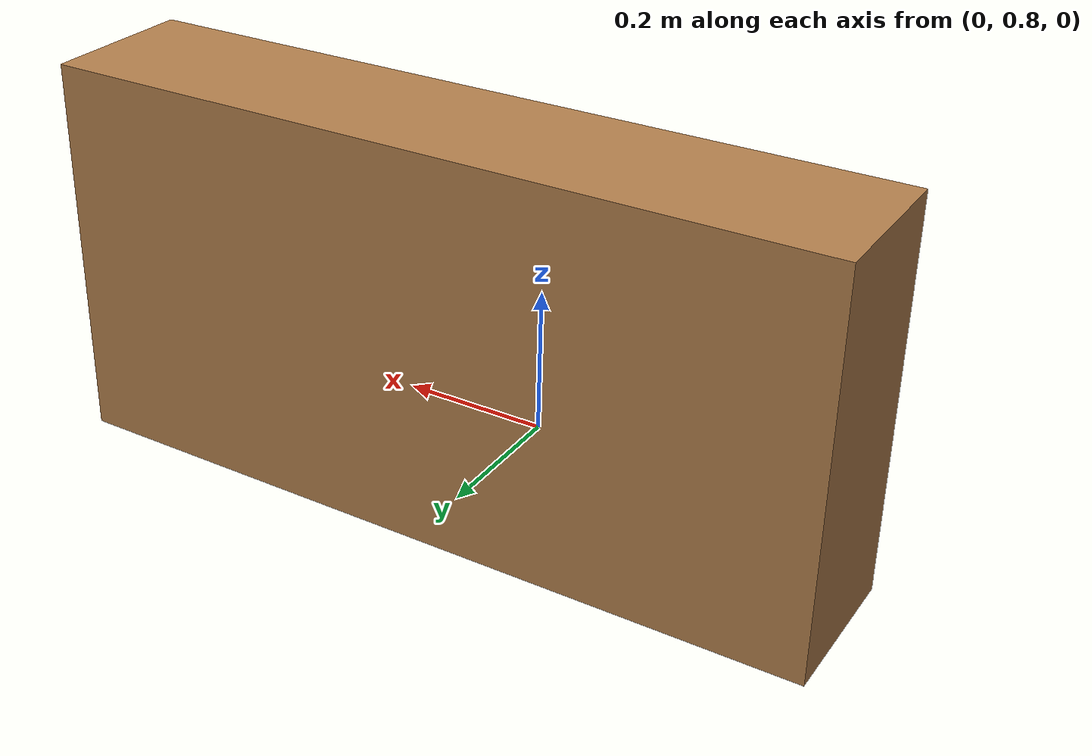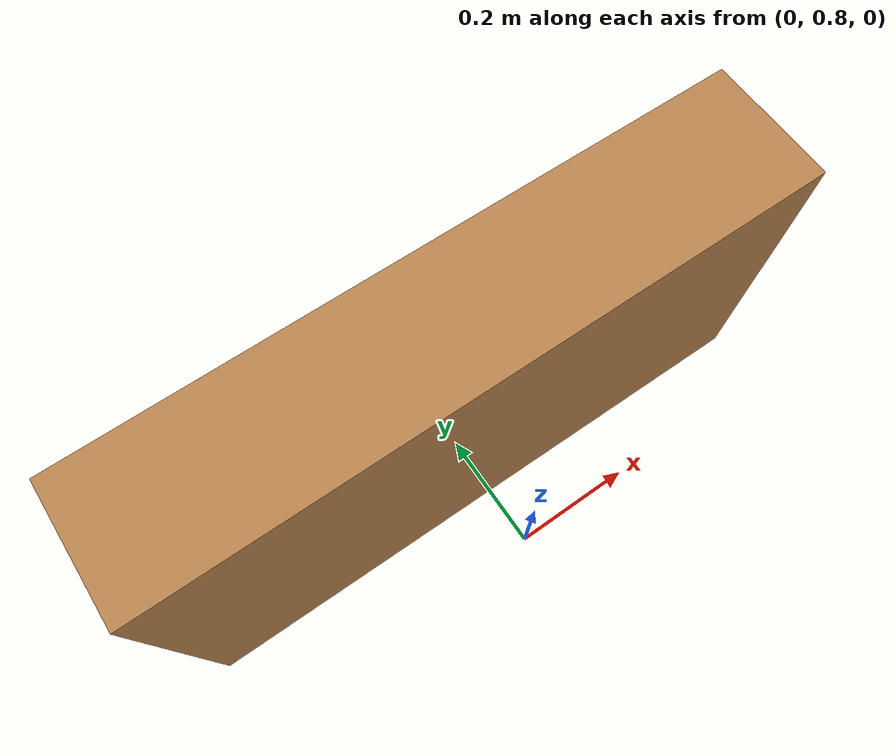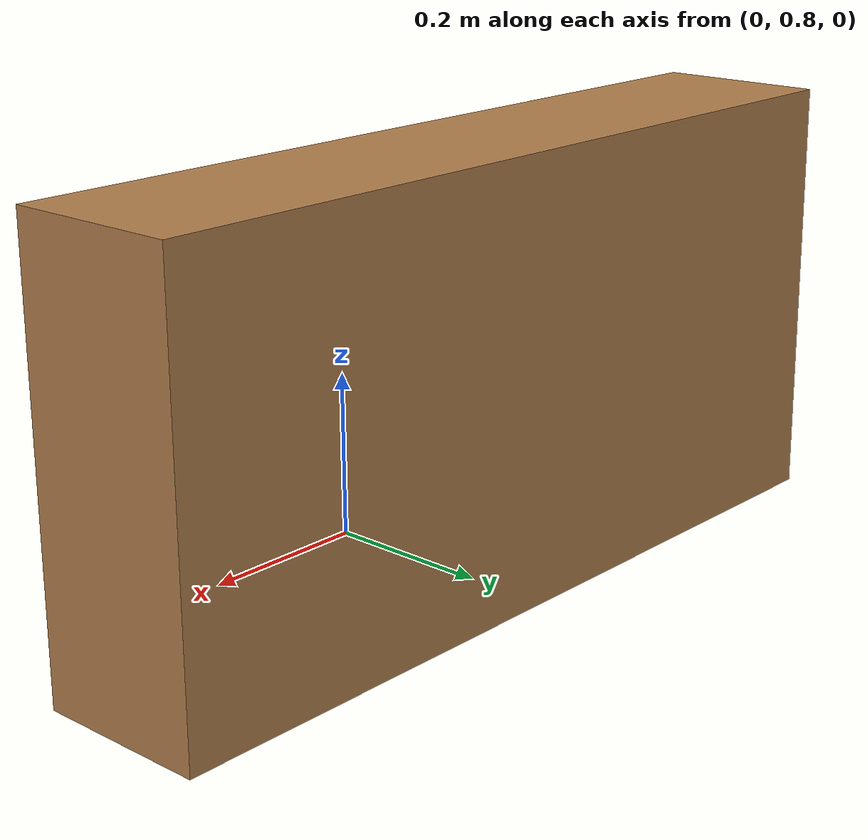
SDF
<?xml version='1.0'?>
<sdf version='1.6'>
  <model name='table'>
    <pose>0 1 0.25 0 0 0</pose>
    <link name='body'>
      <pose>0 0 0 0 0 0</pose>
      <inertial>
        <mass>1.0</mass>
        <inertia>
          <ixx>0.1</ixx>
          <ixy>0</ixy>
          <ixz>0</ixz>
          <iyy>0.1</iyy>
          <iyz>0</iyz>
          <izz>0.1</izz>
        </inertia>
      </inertial>
      <visual name='visual'>
        <geometry>
          <box>
            <size>1 0.2 0.5</size>
          </box>
        </geometry>
        <material>
          <script>
            <uri>model://labo1/materials/test_texture.material</uri>
            <name>WoodTexture</name>
          </script>
        </material>
      </visual>
      <collision name='collision'>
        <geometry>
          <box>
            <size>1 0.2 0.5</size>
          </box>
        </geometry>
        <surface>
          <contact>
            <ode>
              <kp>100000</kp>
              <kd>100</kd>
            </ode>
          </contact>
        </surface>
      </collision>
    </link>
  </model>
</sdf>
